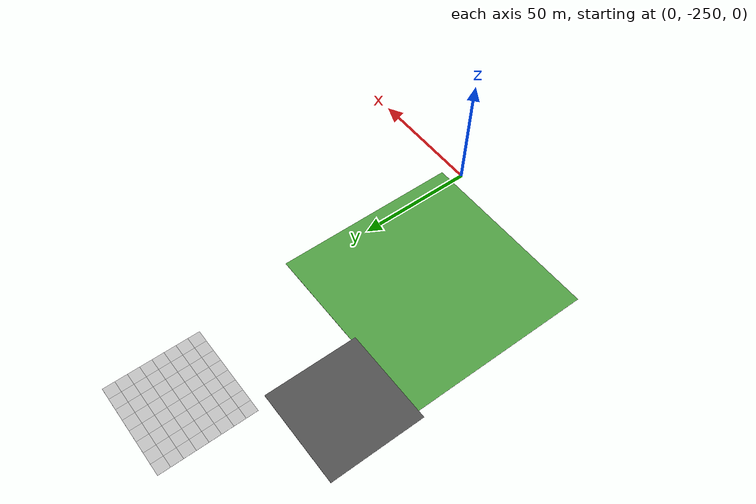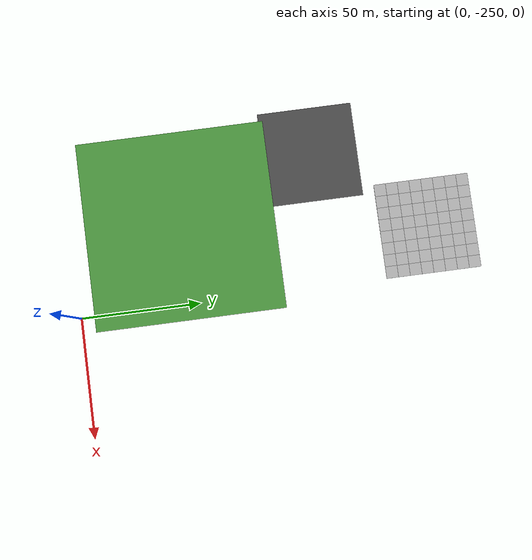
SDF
<sdf version="1.7">
 <world name="default">
  <model name="mud_plane_40x40_4">
   <model name="mud_plane_20x20">
    <model name="mud_plane">
     <static>1</static>
     <link name="link">
      <collision name="collision"><geometry><box><size>10 10 0.1</size></box></geometry></collision>
      <visual name="visual_1">
       <pose>-2.5 2.5 -0.05 0 -0 0</pose>
       <cast_shadows>0</cast_shadows>
       <geometry><box><size>5 5 0.1</size></box></geometry>
       <material>
        <script>
         <uri>model://mud_plane/materials/scripts</uri>
         <uri>model://mud_plane/materials/textures</uri>
         <name>vrc/mud</name>
        </script>
       </material>
      </visual>
      <visual name="visual_2">
       <pose>2.5 2.5 -0.05 0 -0 0</pose>
       <cast_shadows>0</cast_shadows>
       <geometry><box><size>5 5 0.1</size></box></geometry>
       <material>
        <script>
         <uri>model://mud_plane/materials/scripts</uri>
         <uri>model://mud_plane/materials/textures</uri>
         <name>vrc/mud</name>
        </script>
       </material>
      </visual>
      <visual name="visual_3">
       <pose>2.5 -2.5 -0.05 0 -0 0</pose>
       <cast_shadows>0</cast_shadows>
       <geometry><box><size>5 5 0.1</size></box></geometry>
       <material>
        <script>
         <uri>model://mud_plane/materials/scripts</uri>
         <uri>model://mud_plane/materials/textures</uri>
         <name>vrc/mud</name>
        </script>
       </material>
      </visual>
      <visual name="visual_4">
       <pose>-2.5 -2.5 -0.05 0 -0 0</pose>
       <cast_shadows>0</cast_shadows>
       <geometry><box><size>5 5 0.1</size></box></geometry>
       <material>
        <script>
         <uri>model://mud_plane/materials/scripts</uri>
         <uri>model://mud_plane/materials/textures</uri>
         <name>vrc/mud</name>
        </script>
       </material>
      </visual>
     </link>
     <pose>-4.99986 -4.99991 0 0 -0 0</pose>
    </model>
    <model name="mud_plane_0">
     <static>1</static>
     <link name="link">
      <collision name="collision"><geometry><box><size>10 10 0.1</size></box></geometry></collision>
      <visual name="visual_1">
       <pose>-2.5 2.5 -0.05 0 -0 0</pose>
       <cast_shadows>0</cast_shadows>
       <geometry><box><size>5 5 0.1</size></box></geometry>
       <material>
        <script>
         <uri>model://mud_plane/materials/scripts</uri>
         <uri>model://mud_plane/materials/textures</uri>
         <name>vrc/mud</name>
        </script>
       </material>
      </visual>
      <visual name="visual_2">
       <pose>2.5 2.5 -0.05 0 -0 0</pose>
       <cast_shadows>0</cast_shadows>
       <geometry><box><size>5 5 0.1</size></box></geometry>
       <material>
        <script>
         <uri>model://mud_plane/materials/scripts</uri>
         <uri>model://mud_plane/materials/textures</uri>
         <name>vrc/mud</name>
        </script>
       </material>
      </visual>
      <visual name="visual_3">
       <pose>2.5 -2.5 -0.05 0 -0 0</pose>
       <cast_shadows>0</cast_shadows>
       <geometry><box><size>5 5 0.1</size></box></geometry>
       <material>
        <script>
         <uri>model://mud_plane/materials/scripts</uri>
         <uri>model://mud_plane/materials/textures</uri>
         <name>vrc/mud</name>
        </script>
       </material>
      </visual>
      <visual name="visual_4">
       <pose>-2.5 -2.5 -0.05 0 -0 0</pose>
       <cast_shadows>0</cast_shadows>
       <geometry><box><size>5 5 0.1</size></box></geometry>
       <material>
        <script>
         <uri>model://mud_plane/materials/scripts</uri>
         <uri>model://mud_plane/materials/textures</uri>
         <name>vrc/mud</name>
        </script>
       </material>
      </visual>
     </link>
     <pose>-4.99946 4.99954 0 0 -0 0</pose>
    </model>
    <model name="mud_plane_1">
     <static>1</static>
     <link name="link">
      <collision name="collision"><geometry><box><size>10 10 0.1</size></box></geometry></collision>
      <visual name="visual_1">
       <pose>-2.5 2.5 -0.05 0 -0 0</pose>
       <cast_shadows>0</cast_shadows>
       <geometry><box><size>5 5 0.1</size></box></geometry>
       <material>
        <script>
         <uri>model://mud_plane/materials/scripts</uri>
         <uri>model://mud_plane/materials/textures</uri>
         <name>vrc/mud</name>
        </script>
       </material>
      </visual>
      <visual name="visual_2">
       <pose>2.5 2.5 -0.05 0 -0 0</pose>
       <cast_shadows>0</cast_shadows>
       <geometry><box><size>5 5 0.1</size></box></geometry>
       <material>
        <script>
         <uri>model://mud_plane/materials/scripts</uri>
         <uri>model://mud_plane/materials/textures</uri>
         <name>vrc/mud</name>
        </script>
       </material>
      </visual>
      <visual name="visual_3">
       <pose>2.5 -2.5 -0.05 0 -0 0</pose>
       <cast_shadows>0</cast_shadows>
       <geometry><box><size>5 5 0.1</size></box></geometry>
       <material>
        <script>
         <uri>model://mud_plane/materials/scripts</uri>
         <uri>model://mud_plane/materials/textures</uri>
         <name>vrc/mud</name>
        </script>
       </material>
      </visual>
      <visual name="visual_4">
       <pose>-2.5 -2.5 -0.05 0 -0 0</pose>
       <cast_shadows>0</cast_shadows>
       <geometry><box><size>5 5 0.1</size></box></geometry>
       <material>
        <script>
         <uri>model://mud_plane/materials/scripts</uri>
         <uri>model://mud_plane/materials/textures</uri>
         <name>vrc/mud</name>
        </script>
       </material>
      </visual>
     </link>
     <pose>4.99964 -4.99949 0 0 -0 0</pose>
    </model>
    <model name="mud_plane_2">
     <static>1</static>
     <link name="link">
      <collision name="collision"><geometry><box><size>10 10 0.1</size></box></geometry></collision>
      <visual name="visual_1">
       <pose>-2.5 2.5 -0.05 0 -0 0</pose>
       <cast_shadows>0</cast_shadows>
       <geometry><box><size>5 5 0.1</size></box></geometry>
       <material>
        <script>
         <uri>model://mud_plane/materials/scripts</uri>
         <uri>model://mud_plane/materials/textures</uri>
         <name>vrc/mud</name>
        </script>
       </material>
      </visual>
      <visual name="visual_2">
       <pose>2.5 2.5 -0.05 0 -0 0</pose>
       <cast_shadows>0</cast_shadows>
       <geometry><box><size>5 5 0.1</size></box></geometry>
       <material>
        <script>
         <uri>model://mud_plane/materials/scripts</uri>
         <uri>model://mud_plane/materials/textures</uri>
         <name>vrc/mud</name>
        </script>
       </material>
      </visual>
      <visual name="visual_3">
       <pose>2.5 -2.5 -0.05 0 -0 0</pose>
       <cast_shadows>0</cast_shadows>
       <geometry><box><size>5 5 0.1</size></box></geometry>
       <material>
        <script>
         <uri>model://mud_plane/materials/scripts</uri>
         <uri>model://mud_plane/materials/textures</uri>
         <name>vrc/mud</name>
        </script>
       </material>
      </visual>
      <visual name="visual_4">
       <pose>-2.5 -2.5 -0.05 0 -0 0</pose>
       <cast_shadows>0</cast_shadows>
       <geometry><box><size>5 5 0.1</size></box></geometry>
       <material>
        <script>
         <uri>model://mud_plane/materials/scripts</uri>
         <uri>model://mud_plane/materials/textures</uri>
         <name>vrc/mud</name>
        </script>
       </material>
      </visual>
     </link>
     <pose>4.99967 4.99986 0 0 -0 0</pose>
    </model>
    <static>0</static>
    <pose>-9.99895 9.99843 0 0 -0 0</pose>
   </model>
   <model name="mud_plane_20x20_0">
    <model name="mud_plane">
     <static>1</static>
     <link name="link">
      <collision name="collision"><geometry><box><size>10 10 0.1</size></box></geometry></collision>
      <visual name="visual_1">
       <pose>-2.5 2.5 -0.05 0 -0 0</pose>
       <cast_shadows>0</cast_shadows>
       <geometry><box><size>5 5 0.1</size></box></geometry>
       <material>
        <script>
         <uri>model://mud_plane/materials/scripts</uri>
         <uri>model://mud_plane/materials/textures</uri>
         <name>vrc/mud</name>
        </script>
       </material>
      </visual>
      <visual name="visual_2">
       <pose>2.5 2.5 -0.05 0 -0 0</pose>
       <cast_shadows>0</cast_shadows>
       <geometry><box><size>5 5 0.1</size></box></geometry>
       <material>
        <script>
         <uri>model://mud_plane/materials/scripts</uri>
         <uri>model://mud_plane/materials/textures</uri>
         <name>vrc/mud</name>
        </script>
       </material>
      </visual>
      <visual name="visual_3">
       <pose>2.5 -2.5 -0.05 0 -0 0</pose>
       <cast_shadows>0</cast_shadows>
       <geometry><box><size>5 5 0.1</size></box></geometry>
       <material>
        <script>
         <uri>model://mud_plane/materials/scripts</uri>
         <uri>model://mud_plane/materials/textures</uri>
         <name>vrc/mud</name>
        </script>
       </material>
      </visual>
      <visual name="visual_4">
       <pose>-2.5 -2.5 -0.05 0 -0 0</pose>
       <cast_shadows>0</cast_shadows>
       <geometry><box><size>5 5 0.1</size></box></geometry>
       <material>
        <script>
         <uri>model://mud_plane/materials/scripts</uri>
         <uri>model://mud_plane/materials/textures</uri>
         <name>vrc/mud</name>
        </script>
       </material>
      </visual>
     </link>
     <pose>-4.99986 -4.99991 0 0 -0 0</pose>
    </model>
    <model name="mud_plane_0">
     <static>1</static>
     <link name="link">
      <collision name="collision"><geometry><box><size>10 10 0.1</size></box></geometry></collision>
      <visual name="visual_1">
       <pose>-2.5 2.5 -0.05 0 -0 0</pose>
       <cast_shadows>0</cast_shadows>
       <geometry><box><size>5 5 0.1</size></box></geometry>
       <material>
        <script>
         <uri>model://mud_plane/materials/scripts</uri>
         <uri>model://mud_plane/materials/textures</uri>
         <name>vrc/mud</name>
        </script>
       </material>
      </visual>
      <visual name="visual_2">
       <pose>2.5 2.5 -0.05 0 -0 0</pose>
       <cast_shadows>0</cast_shadows>
       <geometry><box><size>5 5 0.1</size></box></geometry>
       <material>
        <script>
         <uri>model://mud_plane/materials/scripts</uri>
         <uri>model://mud_plane/materials/textures</uri>
         <name>vrc/mud</name>
        </script>
       </material>
      </visual>
      <visual name="visual_3">
       <pose>2.5 -2.5 -0.05 0 -0 0</pose>
       <cast_shadows>0</cast_shadows>
       <geometry><box><size>5 5 0.1</size></box></geometry>
       <material>
        <script>
         <uri>model://mud_plane/materials/scripts</uri>
         <uri>model://mud_plane/materials/textures</uri>
         <name>vrc/mud</name>
        </script>
       </material>
      </visual>
      <visual name="visual_4">
       <pose>-2.5 -2.5 -0.05 0 -0 0</pose>
       <cast_shadows>0</cast_shadows>
       <geometry><box><size>5 5 0.1</size></box></geometry>
       <material>
        <script>
         <uri>model://mud_plane/materials/scripts</uri>
         <uri>model://mud_plane/materials/textures</uri>
         <name>vrc/mud</name>
        </script>
       </material>
      </visual>
     </link>
     <pose>-4.99946 4.99954 0 0 -0 0</pose>
    </model>
    <model name="mud_plane_1">
     <static>1</static>
     <link name="link">
      <collision name="collision"><geometry><box><size>10 10 0.1</size></box></geometry></collision>
      <visual name="visual_1">
       <pose>-2.5 2.5 -0.05 0 -0 0</pose>
       <cast_shadows>0</cast_shadows>
       <geometry><box><size>5 5 0.1</size></box></geometry>
       <material>
        <script>
         <uri>model://mud_plane/materials/scripts</uri>
         <uri>model://mud_plane/materials/textures</uri>
         <name>vrc/mud</name>
        </script>
       </material>
      </visual>
      <visual name="visual_2">
       <pose>2.5 2.5 -0.05 0 -0 0</pose>
       <cast_shadows>0</cast_shadows>
       <geometry><box><size>5 5 0.1</size></box></geometry>
       <material>
        <script>
         <uri>model://mud_plane/materials/scripts</uri>
         <uri>model://mud_plane/materials/textures</uri>
         <name>vrc/mud</name>
        </script>
       </material>
      </visual>
      <visual name="visual_3">
       <pose>2.5 -2.5 -0.05 0 -0 0</pose>
       <cast_shadows>0</cast_shadows>
       <geometry><box><size>5 5 0.1</size></box></geometry>
       <material>
        <script>
         <uri>model://mud_plane/materials/scripts</uri>
         <uri>model://mud_plane/materials/textures</uri>
         <name>vrc/mud</name>
        </script>
       </material>
      </visual>
      <visual name="visual_4">
       <pose>-2.5 -2.5 -0.05 0 -0 0</pose>
       <cast_shadows>0</cast_shadows>
       <geometry><box><size>5 5 0.1</size></box></geometry>
       <material>
        <script>
         <uri>model://mud_plane/materials/scripts</uri>
         <uri>model://mud_plane/materials/textures</uri>
         <name>vrc/mud</name>
        </script>
       </material>
      </visual>
     </link>
     <pose>4.99964 -4.99949 0 0 -0 0</pose>
    </model>
    <model name="mud_plane_2">
     <static>1</static>
     <link name="link">
      <collision name="collision"><geometry><box><size>10 10 0.1</size></box></geometry></collision>
      <visual name="visual_1">
       <pose>-2.5 2.5 -0.05 0 -0 0</pose>
       <cast_shadows>0</cast_shadows>
       <geometry><box><size>5 5 0.1</size></box></geometry>
       <material>
        <script>
         <uri>model://mud_plane/materials/scripts</uri>
         <uri>model://mud_plane/materials/textures</uri>
         <name>vrc/mud</name>
        </script>
       </material>
      </visual>
      <visual name="visual_2">
       <pose>2.5 2.5 -0.05 0 -0 0</pose>
       <cast_shadows>0</cast_shadows>
       <geometry><box><size>5 5 0.1</size></box></geometry>
       <material>
        <script>
         <uri>model://mud_plane/materials/scripts</uri>
         <uri>model://mud_plane/materials/textures</uri>
         <name>vrc/mud</name>
        </script>
       </material>
      </visual>
      <visual name="visual_3">
       <pose>2.5 -2.5 -0.05 0 -0 0</pose>
       <cast_shadows>0</cast_shadows>
       <geometry><box><size>5 5 0.1</size></box></geometry>
       <material>
        <script>
         <uri>model://mud_plane/materials/scripts</uri>
         <uri>model://mud_plane/materials/textures</uri>
         <name>vrc/mud</name>
        </script>
       </material>
      </visual>
      <visual name="visual_4">
       <pose>-2.5 -2.5 -0.05 0 -0 0</pose>
       <cast_shadows>0</cast_shadows>
       <geometry><box><size>5 5 0.1</size></box></geometry>
       <material>
        <script>
         <uri>model://mud_plane/materials/scripts</uri>
         <uri>model://mud_plane/materials/textures</uri>
         <name>vrc/mud</name>
        </script>
       </material>
      </visual>
     </link>
     <pose>4.99967 4.99986 0 0 -0 0</pose>
    </model>
    <static>0</static>
    <pose>9.99933 9.9997 0 0 -0 0</pose>
   </model>
   <model name="mud_plane_20x20_1">
    <model name="mud_plane">
     <static>1</static>
     <link name="link">
      <collision name="collision"><geometry><box><size>10 10 0.1</size></box></geometry></collision>
      <visual name="visual_1">
       <pose>-2.5 2.5 -0.05 0 -0 0</pose>
       <cast_shadows>0</cast_shadows>
       <geometry><box><size>5 5 0.1</size></box></geometry>
       <material>
        <script>
         <uri>model://mud_plane/materials/scripts</uri>
         <uri>model://mud_plane/materials/textures</uri>
         <name>vrc/mud</name>
        </script>
       </material>
      </visual>
      <visual name="visual_2">
       <pose>2.5 2.5 -0.05 0 -0 0</pose>
       <cast_shadows>0</cast_shadows>
       <geometry><box><size>5 5 0.1</size></box></geometry>
       <material>
        <script>
         <uri>model://mud_plane/materials/scripts</uri>
         <uri>model://mud_plane/materials/textures</uri>
         <name>vrc/mud</name>
        </script>
       </material>
      </visual>
      <visual name="visual_3">
       <pose>2.5 -2.5 -0.05 0 -0 0</pose>
       <cast_shadows>0</cast_shadows>
       <geometry><box><size>5 5 0.1</size></box></geometry>
       <material>
        <script>
         <uri>model://mud_plane/materials/scripts</uri>
         <uri>model://mud_plane/materials/textures</uri>
         <name>vrc/mud</name>
        </script>
       </material>
      </visual>
      <visual name="visual_4">
       <pose>-2.5 -2.5 -0.05 0 -0 0</pose>
       <cast_shadows>0</cast_shadows>
       <geometry><box><size>5 5 0.1</size></box></geometry>
       <material>
        <script>
         <uri>model://mud_plane/materials/scripts</uri>
         <uri>model://mud_plane/materials/textures</uri>
         <name>vrc/mud</name>
        </script>
       </material>
      </visual>
     </link>
     <pose>-4.99986 -4.99991 0 0 -0 0</pose>
    </model>
    <model name="mud_plane_0">
     <static>1</static>
     <link name="link">
      <collision name="collision"><geometry><box><size>10 10 0.1</size></box></geometry></collision>
      <visual name="visual_1">
       <pose>-2.5 2.5 -0.05 0 -0 0</pose>
       <cast_shadows>0</cast_shadows>
       <geometry><box><size>5 5 0.1</size></box></geometry>
       <material>
        <script>
         <uri>model://mud_plane/materials/scripts</uri>
         <uri>model://mud_plane/materials/textures</uri>
         <name>vrc/mud</name>
        </script>
       </material>
      </visual>
      <visual name="visual_2">
       <pose>2.5 2.5 -0.05 0 -0 0</pose>
       <cast_shadows>0</cast_shadows>
       <geometry><box><size>5 5 0.1</size></box></geometry>
       <material>
        <script>
         <uri>model://mud_plane/materials/scripts</uri>
         <uri>model://mud_plane/materials/textures</uri>
         <name>vrc/mud</name>
        </script>
       </material>
      </visual>
      <visual name="visual_3">
       <pose>2.5 -2.5 -0.05 0 -0 0</pose>
       <cast_shadows>0</cast_shadows>
       <geometry><box><size>5 5 0.1</size></box></geometry>
       <material>
        <script>
         <uri>model://mud_plane/materials/scripts</uri>
         <uri>model://mud_plane/materials/textures</uri>
         <name>vrc/mud</name>
        </script>
       </material>
      </visual>
      <visual name="visual_4">
       <pose>-2.5 -2.5 -0.05 0 -0 0</pose>
       <cast_shadows>0</cast_shadows>
       <geometry><box><size>5 5 0.1</size></box></geometry>
       <material>
        <script>
         <uri>model://mud_plane/materials/scripts</uri>
         <uri>model://mud_plane/materials/textures</uri>
         <name>vrc/mud</name>
        </script>
       </material>
      </visual>
     </link>
     <pose>-4.99946 4.99954 0 0 -0 0</pose>
    </model>
    <model name="mud_plane_1">
     <static>1</static>
     <link name="link">
      <collision name="collision"><geometry><box><size>10 10 0.1</size></box></geometry></collision>
      <visual name="visual_1">
       <pose>-2.5 2.5 -0.05 0 -0 0</pose>
       <cast_shadows>0</cast_shadows>
       <geometry><box><size>5 5 0.1</size></box></geometry>
       <material>
        <script>
         <uri>model://mud_plane/materials/scripts</uri>
         <uri>model://mud_plane/materials/textures</uri>
         <name>vrc/mud</name>
        </script>
       </material>
      </visual>
      <visual name="visual_2">
       <pose>2.5 2.5 -0.05 0 -0 0</pose>
       <cast_shadows>0</cast_shadows>
       <geometry><box><size>5 5 0.1</size></box></geometry>
       <material>
        <script>
         <uri>model://mud_plane/materials/scripts</uri>
         <uri>model://mud_plane/materials/textures</uri>
         <name>vrc/mud</name>
        </script>
       </material>
      </visual>
      <visual name="visual_3">
       <pose>2.5 -2.5 -0.05 0 -0 0</pose>
       <cast_shadows>0</cast_shadows>
       <geometry><box><size>5 5 0.1</size></box></geometry>
       <material>
        <script>
         <uri>model://mud_plane/materials/scripts</uri>
         <uri>model://mud_plane/materials/textures</uri>
         <name>vrc/mud</name>
        </script>
       </material>
      </visual>
      <visual name="visual_4">
       <pose>-2.5 -2.5 -0.05 0 -0 0</pose>
       <cast_shadows>0</cast_shadows>
       <geometry><box><size>5 5 0.1</size></box></geometry>
       <material>
        <script>
         <uri>model://mud_plane/materials/scripts</uri>
         <uri>model://mud_plane/materials/textures</uri>
         <name>vrc/mud</name>
        </script>
       </material>
      </visual>
     </link>
     <pose>4.99964 -4.99949 0 0 -0 0</pose>
    </model>
    <model name="mud_plane_2">
     <static>1</static>
     <link name="link">
      <collision name="collision"><geometry><box><size>10 10 0.1</size></box></geometry></collision>
      <visual name="visual_1">
       <pose>-2.5 2.5 -0.05 0 -0 0</pose>
       <cast_shadows>0</cast_shadows>
       <geometry><box><size>5 5 0.1</size></box></geometry>
       <material>
        <script>
         <uri>model://mud_plane/materials/scripts</uri>
         <uri>model://mud_plane/materials/textures</uri>
         <name>vrc/mud</name>
        </script>
       </material>
      </visual>
      <visual name="visual_2">
       <pose>2.5 2.5 -0.05 0 -0 0</pose>
       <cast_shadows>0</cast_shadows>
       <geometry><box><size>5 5 0.1</size></box></geometry>
       <material>
        <script>
         <uri>model://mud_plane/materials/scripts</uri>
         <uri>model://mud_plane/materials/textures</uri>
         <name>vrc/mud</name>
        </script>
       </material>
      </visual>
      <visual name="visual_3">
       <pose>2.5 -2.5 -0.05 0 -0 0</pose>
       <cast_shadows>0</cast_shadows>
       <geometry><box><size>5 5 0.1</size></box></geometry>
       <material>
        <script>
         <uri>model://mud_plane/materials/scripts</uri>
         <uri>model://mud_plane/materials/textures</uri>
         <name>vrc/mud</name>
        </script>
       </material>
      </visual>
      <visual name="visual_4">
       <pose>-2.5 -2.5 -0.05 0 -0 0</pose>
       <cast_shadows>0</cast_shadows>
       <geometry><box><size>5 5 0.1</size></box></geometry>
       <material>
        <script>
         <uri>model://mud_plane/materials/scripts</uri>
         <uri>model://mud_plane/materials/textures</uri>
         <name>vrc/mud</name>
        </script>
       </material>
      </visual>
     </link>
     <pose>4.99967 4.99986 0 0 -0 0</pose>
    </model>
    <static>0</static>
    <pose>9.9993 -9.99877 0 0 -0 0</pose>
   </model>
   <model name="mud_plane_20x20_2">
    <model name="mud_plane">
     <static>1</static>
     <link name="link">
      <collision name="collision"><geometry><box><size>10 10 0.1</size></box></geometry></collision>
      <visual name="visual_1">
       <pose>-2.5 2.5 -0.05 0 -0 0</pose>
       <cast_shadows>0</cast_shadows>
       <geometry><box><size>5 5 0.1</size></box></geometry>
       <material>
        <script>
         <uri>model://mud_plane/materials/scripts</uri>
         <uri>model://mud_plane/materials/textures</uri>
         <name>vrc/mud</name>
        </script>
       </material>
      </visual>
      <visual name="visual_2">
       <pose>2.5 2.5 -0.05 0 -0 0</pose>
       <cast_shadows>0</cast_shadows>
       <geometry><box><size>5 5 0.1</size></box></geometry>
       <material>
        <script>
         <uri>model://mud_plane/materials/scripts</uri>
         <uri>model://mud_plane/materials/textures</uri>
         <name>vrc/mud</name>
        </script>
       </material>
      </visual>
      <visual name="visual_3">
       <pose>2.5 -2.5 -0.05 0 -0 0</pose>
       <cast_shadows>0</cast_shadows>
       <geometry><box><size>5 5 0.1</size></box></geometry>
       <material>
        <script>
         <uri>model://mud_plane/materials/scripts</uri>
         <uri>model://mud_plane/materials/textures</uri>
         <name>vrc/mud</name>
        </script>
       </material>
      </visual>
      <visual name="visual_4">
       <pose>-2.5 -2.5 -0.05 0 -0 0</pose>
       <cast_shadows>0</cast_shadows>
       <geometry><box><size>5 5 0.1</size></box></geometry>
       <material>
        <script>
         <uri>model://mud_plane/materials/scripts</uri>
         <uri>model://mud_plane/materials/textures</uri>
         <name>vrc/mud</name>
        </script>
       </material>
      </visual>
     </link>
     <pose>-4.99986 -4.99991 0 0 -0 0</pose>
    </model>
    <model name="mud_plane_0">
     <static>1</static>
     <link name="link">
      <collision name="collision"><geometry><box><size>10 10 0.1</size></box></geometry></collision>
      <visual name="visual_1">
       <pose>-2.5 2.5 -0.05 0 -0 0</pose>
       <cast_shadows>0</cast_shadows>
       <geometry><box><size>5 5 0.1</size></box></geometry>
       <material>
        <script>
         <uri>model://mud_plane/materials/scripts</uri>
         <uri>model://mud_plane/materials/textures</uri>
         <name>vrc/mud</name>
        </script>
       </material>
      </visual>
      <visual name="visual_2">
       <pose>2.5 2.5 -0.05 0 -0 0</pose>
       <cast_shadows>0</cast_shadows>
       <geometry><box><size>5 5 0.1</size></box></geometry>
       <material>
        <script>
         <uri>model://mud_plane/materials/scripts</uri>
         <uri>model://mud_plane/materials/textures</uri>
         <name>vrc/mud</name>
        </script>
       </material>
      </visual>
      <visual name="visual_3">
       <pose>2.5 -2.5 -0.05 0 -0 0</pose>
       <cast_shadows>0</cast_shadows>
       <geometry><box><size>5 5 0.1</size></box></geometry>
       <material>
        <script>
         <uri>model://mud_plane/materials/scripts</uri>
         <uri>model://mud_plane/materials/textures</uri>
         <name>vrc/mud</name>
        </script>
       </material>
      </visual>
      <visual name="visual_4">
       <pose>-2.5 -2.5 -0.05 0 -0 0</pose>
       <cast_shadows>0</cast_shadows>
       <geometry><box><size>5 5 0.1</size></box></geometry>
       <material>
        <script>
         <uri>model://mud_plane/materials/scripts</uri>
         <uri>model://mud_plane/materials/textures</uri>
         <name>vrc/mud</name>
        </script>
       </material>
      </visual>
     </link>
     <pose>-4.99946 4.99954 0 0 -0 0</pose>
    </model>
    <model name="mud_plane_1">
     <static>1</static>
     <link name="link">
      <collision name="collision"><geometry><box><size>10 10 0.1</size></box></geometry></collision>
      <visual name="visual_1">
       <pose>-2.5 2.5 -0.05 0 -0 0</pose>
       <cast_shadows>0</cast_shadows>
       <geometry><box><size>5 5 0.1</size></box></geometry>
       <material>
        <script>
         <uri>model://mud_plane/materials/scripts</uri>
         <uri>model://mud_plane/materials/textures</uri>
         <name>vrc/mud</name>
        </script>
       </material>
      </visual>
      <visual name="visual_2">
       <pose>2.5 2.5 -0.05 0 -0 0</pose>
       <cast_shadows>0</cast_shadows>
       <geometry><box><size>5 5 0.1</size></box></geometry>
       <material>
        <script>
         <uri>model://mud_plane/materials/scripts</uri>
         <uri>model://mud_plane/materials/textures</uri>
         <name>vrc/mud</name>
        </script>
       </material>
      </visual>
      <visual name="visual_3">
       <pose>2.5 -2.5 -0.05 0 -0 0</pose>
       <cast_shadows>0</cast_shadows>
       <geometry><box><size>5 5 0.1</size></box></geometry>
       <material>
        <script>
         <uri>model://mud_plane/materials/scripts</uri>
         <uri>model://mud_plane/materials/textures</uri>
         <name>vrc/mud</name>
        </script>
       </material>
      </visual>
      <visual name="visual_4">
       <pose>-2.5 -2.5 -0.05 0 -0 0</pose>
       <cast_shadows>0</cast_shadows>
       <geometry><box><size>5 5 0.1</size></box></geometry>
       <material>
        <script>
         <uri>model://mud_plane/materials/scripts</uri>
         <uri>model://mud_plane/materials/textures</uri>
         <name>vrc/mud</name>
        </script>
       </material>
      </visual>
     </link>
     <pose>4.99964 -4.99949 0 0 -0 0</pose>
    </model>
    <model name="mud_plane_2">
     <static>1</static>
     <link name="link">
      <collision name="collision"><geometry><box><size>10 10 0.1</size></box></geometry></collision>
      <visual name="visual_1">
       <pose>-2.5 2.5 -0.05 0 -0 0</pose>
       <cast_shadows>0</cast_shadows>
       <geometry><box><size>5 5 0.1</size></box></geometry>
       <material>
        <script>
         <uri>model://mud_plane/materials/scripts</uri>
         <uri>model://mud_plane/materials/textures</uri>
         <name>vrc/mud</name>
        </script>
       </material>
      </visual>
      <visual name="visual_2">
       <pose>2.5 2.5 -0.05 0 -0 0</pose>
       <cast_shadows>0</cast_shadows>
       <geometry><box><size>5 5 0.1</size></box></geometry>
       <material>
        <script>
         <uri>model://mud_plane/materials/scripts</uri>
         <uri>model://mud_plane/materials/textures</uri>
         <name>vrc/mud</name>
        </script>
       </material>
      </visual>
      <visual name="visual_3">
       <pose>2.5 -2.5 -0.05 0 -0 0</pose>
       <cast_shadows>0</cast_shadows>
       <geometry><box><size>5 5 0.1</size></box></geometry>
       <material>
        <script>
         <uri>model://mud_plane/materials/scripts</uri>
         <uri>model://mud_plane/materials/textures</uri>
         <name>vrc/mud</name>
        </script>
       </material>
      </visual>
      <visual name="visual_4">
       <pose>-2.5 -2.5 -0.05 0 -0 0</pose>
       <cast_shadows>0</cast_shadows>
       <geometry><box><size>5 5 0.1</size></box></geometry>
       <material>
        <script>
         <uri>model://mud_plane/materials/scripts</uri>
         <uri>model://mud_plane/materials/textures</uri>
         <name>vrc/mud</name>
        </script>
       </material>
      </visual>
     </link>
     <pose>4.99967 4.99986 0 0 -0 0</pose>
    </model>
    <static>0</static>
    <pose>-9.99969 -9.99935 0 0 -0 0</pose>
   </model>
   <static>0</static>
   <pose>-20.1428 -101.551 0 0 -0 0</pose>
  </model>
  <model name="grass_plane_80x80_12">
   <pose>-33.5727 -204.646 -0.05 0 -0 0</pose>
   <static>1</static>
   <link name="link">
    <collision name="collision"><geometry><box><size>80 80 0.1</size></box></geometry></collision>
    <visual name="grass">
     <cast_shadows>0</cast_shadows>
     <geometry><box><size>80 80 0.1</size></box></geometry>
     <material>
      <script><uri>file://media/materials/scripts/gazebo.material</uri><name>Gazebo/Grass</name></script>
     </material>
    </visual>
   </link>
  </model>
  <model name="asphalt_plane_40x40_1">
   <pose>-56.572 -146.486 -0.05 0 -0 0</pose>
   <static>1</static>
   <link name="link">
    <collision name="collision"><geometry><box><size>40 40 0.1</size></box></geometry></collision>
    <visual name="visual">
     <cast_shadows>0</cast_shadows>
     <geometry><box><size>40 40 0.1</size></box></geometry>
     <material>
      <script>
       <uri>model://asphalt_plane_40x40/materials/scripts</uri>
       <uri>model://asphalt_plane_40x40/materials/textures</uri>
       <name>vrc/asphalt</name>
      </script>
     </material>
    </visual>
   </link>
  </model>
 </world>
</sdf>
